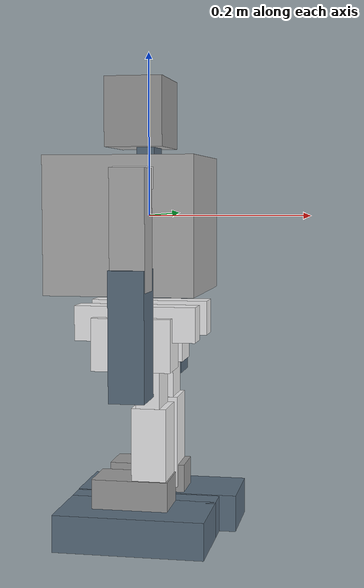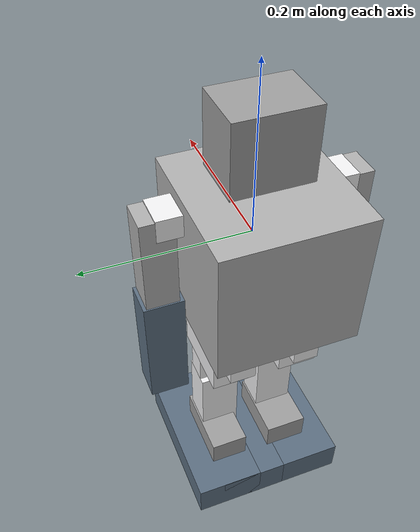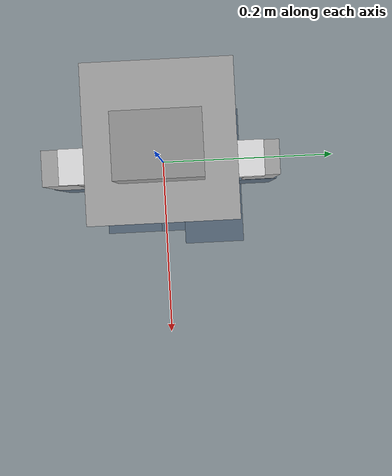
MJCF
<mujoco model="bez2">
  <compiler angle="radian"/>
  <worldbody>
    <body name="trunk">
      <inertial pos="-0.132493 0.00329389 -0.0267196" quat="0.727595 0.68359 0.0487527 -0.0305389" mass="1.44293" diaginertia="0.00978489 0.00806535 0.00665576"/>
      <geom size="0.091145 0.086075 0.083325" pos="-0.02 0 -0.011" type="box" rgba="0.7 0.7 0.7 1"/>
      <body name="neck" pos="0 0.00025 0.0725">
        <inertial pos="8.93697e-11 0.00124098 0.0120405" quat="0.707107 0.707107 0 0" mass="0.00424711" diaginertia="2e-06 2e-06 1e-06"/>
        <joint name="head_yaw" pos="0 0 0" axis="0 0 1" range="-1.5708 1.5708"/>
        <geom size="0.010975 0.022515 0.019385" pos="0.00011 -1e-05 0.01937" type="box" rgba="0.364706 0.439216 0.509804 1"/>
        <body name="head" pos="0 -0.0185 0.025">
          <inertial pos="-0.0025762 0.0189918 0.0330059" quat="0.968363 -0.00401205 0.248843 0.0182951" mass="0.264339" diaginertia="0.000267836 0.000238997 0.000135166"/>
          <joint name="head_pitch" pos="0 0 0" axis="0 1 0" range="0 1.5708"/>
          <geom size="0.035555 0.04732 0.042165" pos="-0.00985 0.01921 0.02791" type="box" rgba="0.627451 0.627451 0.627451 1"/>
          <body name="camera" pos="0.015 0.00145 0.0474">
            <inertial pos="0 0 0" mass="0.01" diaginertia="1e-09 1e-09 1e-09"/>
          </body>
        </body>
      </body>
      <body name="left_shoulder" pos="0.003 0.084 0.04475">
        <inertial pos="8.92269e-11 0.00784403 0" quat="0.5 0.5 0.5 0.5" mass="0.0105929" diaginertia="3e-06 3e-06 1e-06"/>
        <joint name="left_shoulder_pitch" pos="0 0 0" axis="0 -1 0" range="-3.14159 3.92699"/>
        <geom size="0.020525 0.01627 0.01355" pos="-2e-05 0.01594 -0.00024" type="box" rgba="0.960784 0.960784 0.964706 1"/>
        <body name="left_bicep" pos="0.019 0.0303 0">
          <inertial pos="-0.0194205 0.000104779 -0.0605146" quat="0.692309 0.0113936 0.00585463 0.721487" mass="0.186364" diaginertia="0.000444025 0.000442243 3.47325e-05"/>
          <joint name="left_shoulder_roll" pos="0 0 0" axis="1 0 0" range="0 1.5708"/>
          <geom size="0.019935 0.019855 0.070825" pos="-0.01912 -0.0004 -0.05958" type="box" rgba="0.7 0.7 0.7 1"/>
          <body name="left_forearm" pos="-0.020403 0.018801 -0.119141">
            <inertial pos="0.000490444 -0.0197004 -0.0814475" mass="0.0598454" diaginertia="0.000124 0.000119 2.1e-05"/>
            <joint name="left_elbow" pos="0 0 0" axis="0 -1 0" range="0 3.14159"/>
            <geom size="0.02109 0.024585 0.075675" pos="0.00052 -0.01971 -0.06132" type="box" rgba="0.364706 0.439216 0.509804 1"/>
          </body>
        </body>
      </body>
      <body name="left_hip_side" pos="0.016 0.04125 -0.1085">
        <inertial pos="-0.0176303 0 -0.00718842" quat="0.487846 0.511866 0.511866 0.487846" mass="0.0392957" diaginertia="9.2e-05 9.01923e-05 6.80767e-06"/>
        <joint name="left_hip_yaw" pos="0 0 0" axis="0 0 -1" range="-1.309 0.524"/>
        <geom size="0.07458 0.016 0.021575" pos="-0.02258 0 -0.02145" type="box" rgba="0.960784 0.960784 0.964706 1"/>
        <body name="left_hip_front" pos="-0.0707 0 -0.028">
          <inertial pos="0.0471916 0.000172982 -0.0174801" quat="0.456499 0.538085 0.517889 0.483595" mass="0.2722" diaginertia="0.000233099 0.000193073 0.000105828"/>
          <joint name="left_hip_roll" pos="0 0 0" axis="1 0 0" range="-0.785398 1.5708"/>
          <geom size="0.047115 0.02425 0.03198" pos="0.04505 0.00374 -0.01736" type="box" rgba="0.960784 0.960784 0.964706 1"/>
          <body name="left_thigh" pos="0.066269 0.0235 -0.036">
            <inertial pos="-3.48325e-07 -0.0289611 -0.0366193" mass="0.0289828" diaginertia="3.5e-05 2.1e-05 1.7e-05"/>
            <joint name="left_hip_pitch" pos="0 0 0" axis="0 -1 0" range="-0.785398 2.35619"/>
            <geom size="0.014515 0.02532 0.049775" pos="0.00014 -0.02319 -0.03621" type="box" rgba="0.960784 0.960784 0.964706 1"/>
            <body name="left_calve" pos="0 0 -0.072">
              <inertial pos="-5.27217e-05 -0.0237668 -0.0239014" quat="0.998068 -0.0621374 0 0" mass="0.15898" diaginertia="0.000124 0.000108 4.3e-05"/>
              <joint name="left_knee" pos="0 0 0" axis="0 -1 0" range="-2.793 0"/>
              <geom size="0.02122 0.02558 0.05825" pos="-0.00102 -0.02343 -0.0442" type="box" rgba="0.960784 0.960784 0.964706 1"/>
              <body name="left_ankle" pos="0 0 -0.088">
                <inertial pos="-0.019088 -0.023327 -0.0185199" quat="0.538085 0.456499 0.483595 0.517889" mass="0.2722" diaginertia="0.000233099 0.000193073 0.000105828"/>
                <joint name="left_ankle_pitch" pos="0 0 0" axis="0 -1 0" range="-0.785398 1.5708"/>
                <geom size="0.0481 0.02444 0.03192" pos="-0.02007 -0.01995 -0.01858" type="box" rgba="0.627451 0.627451 0.627451 1"/>
                <body name="left_foot" pos="-0.0663 -0.0235 -0.036">
                  <inertial pos="0.0531233 0.0131171 -0.0171875" quat="0.0416633 0.697462 0.0260306 0.714936" mass="0.0392927" diaginertia="0.000144264 0.000123855 2.58809e-05"/>
                  <joint name="left_ankle_roll" pos="0 0 0" axis="1 0 0" range="-0.785398 0.785398"/>
                  <geom size="0.10247 0.045 0.02307" pos="0.0595 0.018 -0.00871" type="box" rgba="0.364706 0.439216 0.509804 1"/>
                    <geom size="0.092 0.045 0.02259" pos="0.04903 -0.018 -0.00918" type="box" rgba="0.364706 0.439216 0.509804 1"/>

                </body>
              </body>
            </body>
          </body>
        </body>
      </body>
      <body name="right_shoulder" pos="0.003 -0.084 0.04475">
        <inertial pos="8.95853e-11 -0.00784403 0" quat="0.5 0.5 0.5 0.5" mass="0.0105929" diaginertia="3e-06 3e-06 1e-06"/>
        <joint name="right_shoulder_pitch" pos="0 0 0" axis="0 -1 0" range="-3.14159 3.92699"/>
        <geom size="0.02051 0.016625 0.012915" pos="1e-05 -0.0161 -6e-05" type="box" rgba="0.960784 0.960784 0.964706 1"/>
        <body name="right_bicep" pos="0.019 -0.0303 0">
          <inertial pos="-0.0190714 -0.00123171 -0.0605146" quat="0.751663 -0.00525377 0.0143766 0.659369" mass="0.186364" diaginertia="0.000444317 0.000443067 3.46163e-05"/>
          <joint name="right_shoulder_roll" pos="0 0 0" axis="-1 0 0" range="0 1.5708"/>
          <geom size="0.02055 0.019855 0.07082" pos="-0.0185 -0.0016 -0.05957" type="box" rgba="0.7 0.7 0.7 1"/>
          <body name="right_forearm" pos="-0.019597 -0.020801 -0.119141">
            <inertial pos="0.000490325 0.0197004 -0.0814475" mass="0.0598454" diaginertia="0.000124 0.000119 2.1e-05"/>
            <joint name="right_elbow" pos="0 0 0" axis="0 -1 0" range="0 3.14159"/>
            <geom size="0.02104 0.02459 0.07575" pos="0.00057 0.01974 -0.06122" type="box" rgba="0.364706 0.439216 0.509804 1"/>
          </body>
        </body>
      </body>
      <body name="right_hip_side" pos="0.016 -0.04125 -0.1085">
        <inertial pos="-0.0176303 0 -0.00718842" quat="0.487846 0.511866 0.511866 0.487846" mass="0.0392957" diaginertia="9.2e-05 9.01923e-05 6.80767e-06"/>
        <joint name="right_hip_yaw" pos="0 0 0" axis="0 0 1" range="-1.309 0.524"/>
        <geom size="0.0744 0.016 0.021375" pos="-0.02263 0 -0.02126" type="box" rgba="0.960784 0.960784 0.964706 1"/>
        <body name="right_hip_front" pos="-0.0707 0 -0.028">
          <inertial pos="0.0472122 -0.000172989 -0.0174801" quat="0.483595 0.517889 0.538085 0.456499" mass="0.2722" diaginertia="0.000233099 0.000193073 0.000105828"/>
          <joint name="right_hip_roll" pos="0 0 0" axis="-1 0 0" range="-0.785398 1.5708"/>
          <geom size="0.04858 0.02526 0.032095" pos="0.04588 -0.00299 -0.01759" type="box" rgba="0.960784 0.960784 0.964706 1"/>
          <body name="right_thigh" pos="0.0663 -0.0235 -0.036">
            <inertial pos="9.83252e-08 0.0289611 -0.0366193" mass="0.0289828" diaginertia="3.5e-05 2.1e-05 1.7e-05"/>
            <joint name="right_hip_pitch" pos="0 0 0" axis="0 -1 0" range="-0.785398 2.35619"/>
            <geom size="0.014515 0.02532 0.049775" pos="-0.00014 0.02319 -0.03621" type="box" rgba="0.960784 0.960784 0.964706 1"/>
            <body name="right_calve" pos="0 0 -0.072">
              <inertial pos="5.24717e-05 0.0237668 -0.0239014" quat="0.998068 0.0621374 0 0" mass="0.15898" diaginertia="0.000124 0.000108 4.3e-05"/>
              <joint name="right_knee" pos="0 0 0" axis="0 -1 0" range="-2.793 0"/>
              <geom size="0.02122 0.02558 0.05825" pos="0.00102 0.02343 -0.0442" type="box" rgba="0.960784 0.960784 0.964706 1"/>
              <body name="right_ankle" pos="0 0 -0.088">
                <inertial pos="-0.0193325 0.0235572 -0.0181705" quat="0.530545 0.465974 0.453347 0.543936" mass="0.2722" diaginertia="0.000229026 0.00019101 0.000105965"/>
                <joint name="right_ankle_pitch" pos="0 0 0" axis="0 -1 0" range="-0.785398 1.5708"/>
                <geom size="0.04674 0.027825 0.032" pos="-0.02271 0.02339 -0.01857" type="box" rgba="0.627451 0.627451 0.627451 1"/>
                <body name="right_foot" pos="-0.0663 0.0235 -0.036">
                  <inertial pos="0.0531235 -0.0131171 -0.0171875" quat="-0.0416633 0.697462 -0.0260306 0.714936" mass="0.0392927" diaginertia="0.000144264 0.000123855 2.58809e-05"/>
                  <joint name="right_ankle_roll" pos="0 0 0" axis="-1 0 0" range="-0.785398 0.785398"/>
                  <geom size="0.092 0.045 0.02259" pos="0.04903 -0.018 -0.00918" type="box" rgba="0.364706 0.439216 0.509804 1"/>
                </body>
              </body>
            </body>
          </body>
        </body>
      </body>
      <body name="imu_link">
        <inertial pos="0 0 0" mass="0.01" diaginertia="1e-09 1e-09 1e-09"/>
      </body>
    </body>
  </worldbody>
</mujoco>
